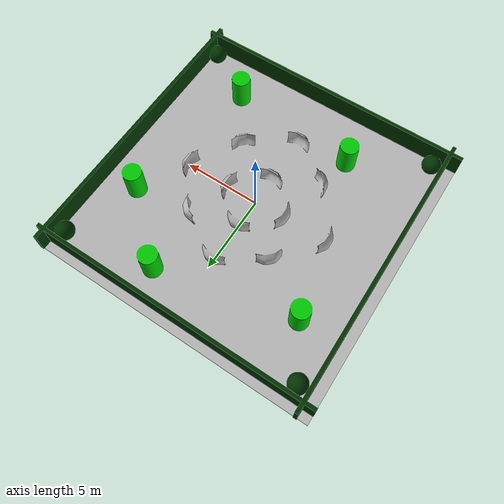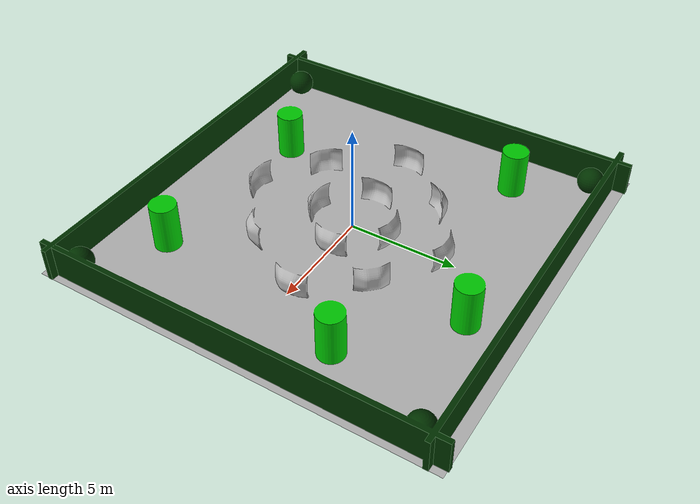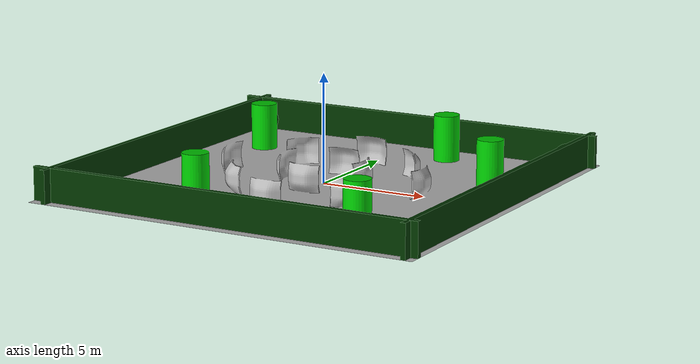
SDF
<?xml version="1.0" ?>
<sdf version="1.6">
  <model name="map6">
    <static>true</static>
    <link name="link">
      <visual name="visual">
        <geometry>
          <mesh>
            <uri>model://map6/meshes/map6.dae</uri>
            <scale>0.6 0.6 0.6</scale>
          </mesh>
        </geometry>
      </visual>
      <collision name="collision">
        <geometry>
          <mesh>
            <uri>model://map6/meshes/map6.dae</uri>
            <scale>0.6 0.6 0.6</scale>
          </mesh>
        </geometry>
      </collision>
    </link>
  </model>
</sdf>
